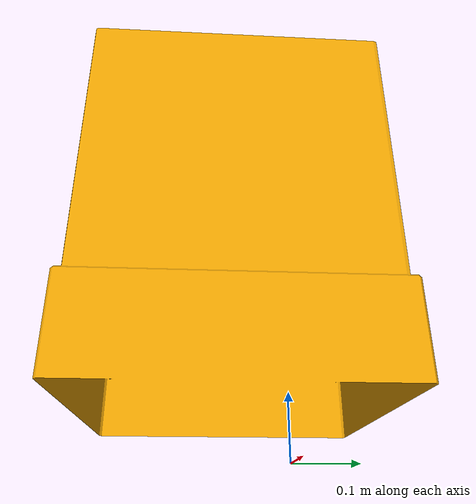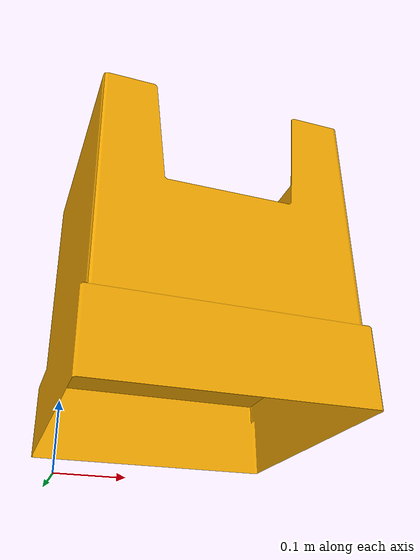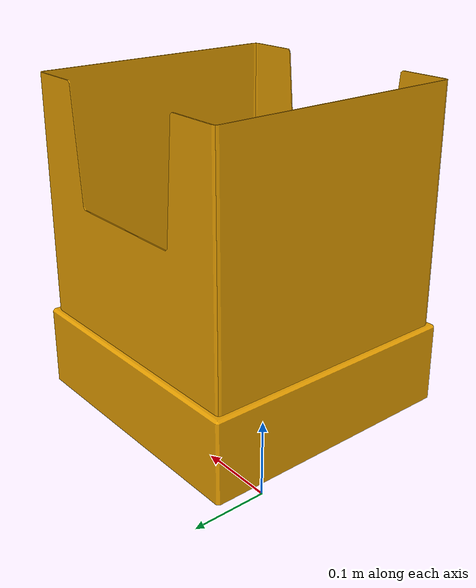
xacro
<?xml version="1.0"?>
<robot name="bin" xmlns:xacro="http://www.ros.org/wiki/xacro">
    <xacro:arg name="prefix" default="bin_"/>

    <!-- URDF -->
    <xacro:include filename="$(find hrwros_support)/urdf/bin/bin.urdf.xacro"/>
    <xacro:bin_urdf prefix="$(arg prefix)"/>

    <!-- Gazebo -->
    <xacro:include filename="$(find hrwros_support)/urdf/bin/bin.gazebo.xacro"/>
    <xacro:bin_gazebo prefix="$(arg prefix)"/>

</robot>

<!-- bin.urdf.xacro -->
<robot xmlns:xacro="http://www.ros.org/wiki/xacro">
  <xacro:macro name="bin_urdf" params="prefix">
    <!-- link list -->
    <link name="${prefix}base_link">
      <visual>
        <origin xyz="0 0 0" rpy="0 0 0" />
        <geometry>
          <mesh filename="package://hrwros_support/meshes/bin/visual/bin.dae" />
          <scale>0.05 0.05 0.05</scale>
        </geometry>
      </visual>
      <collision>
        <origin xyz="0 0 0" rpy="0 0 0"/>
        <geometry>
          <mesh filename="package://hrwros_support/meshes/bin/collision/bin_bottom.dae"/>
          <scale>0.05 0.05 0.05</scale>
        </geometry>
      </collision>
      <collision>
        <origin xyz="0 0 0" rpy="0 0 0"/>
        <geometry>
          <mesh filename="package://hrwros_support/meshes/bin/collision/bin_sides.dae"/>
          <scale>0.05 0.05 0.05</scale>
        </geometry>
      </collision>
      <inertial>
        <origin xyz="0 0 0" rpy="0 0 0" />
        <inertia ixx="1.0" ixy="0" ixz="0"
                 iyy="1.0" iyz="0"
                 izz="1.0" />
        <mass value="100" />
      </inertial>
    </link>
    <link name="${prefix}drop_point">
      <inertial>
        <origin xyz="0 0 0" rpy="0 0 0" />
        <inertia ixx="1.0" ixy="0" ixz="0"
                 iyy="1.0" iyz="0"
                 izz="1.0" />
        <mass value="1.0" />
      </inertial>
    </link>
    <!-- joint list -->
    <joint name="${prefix}joint_1" type="fixed">
      <origin xyz="0 0 1.0" rpy="0 0 0" />
      <parent link="${prefix}base_link" />
      <child link="${prefix}drop_point" />
    </joint>
  </xacro:macro>
</robot>
